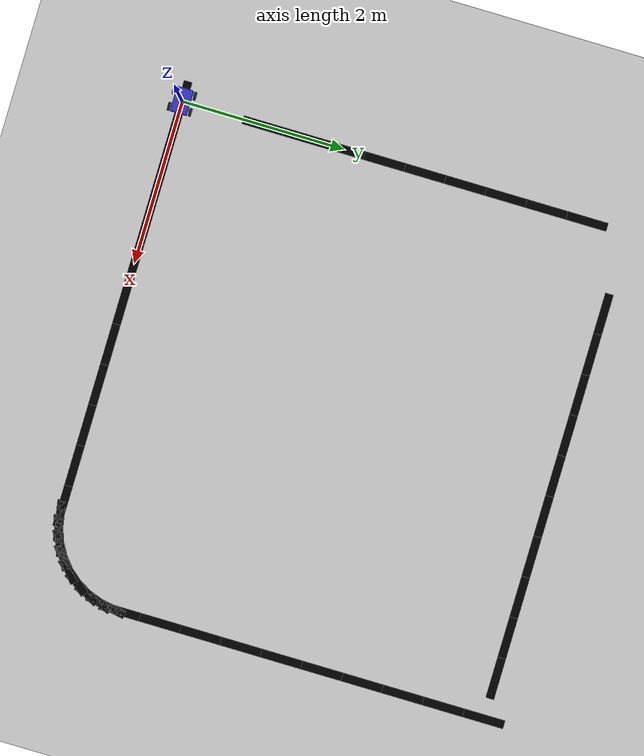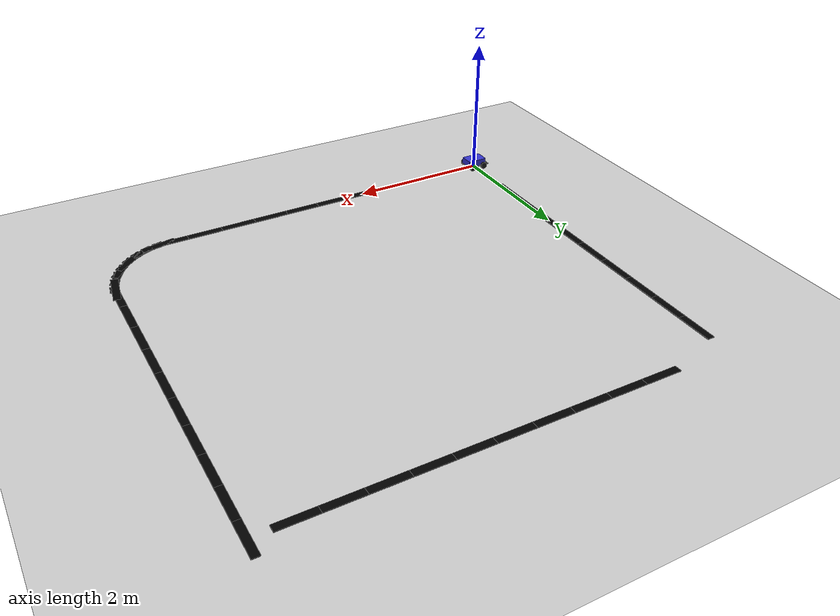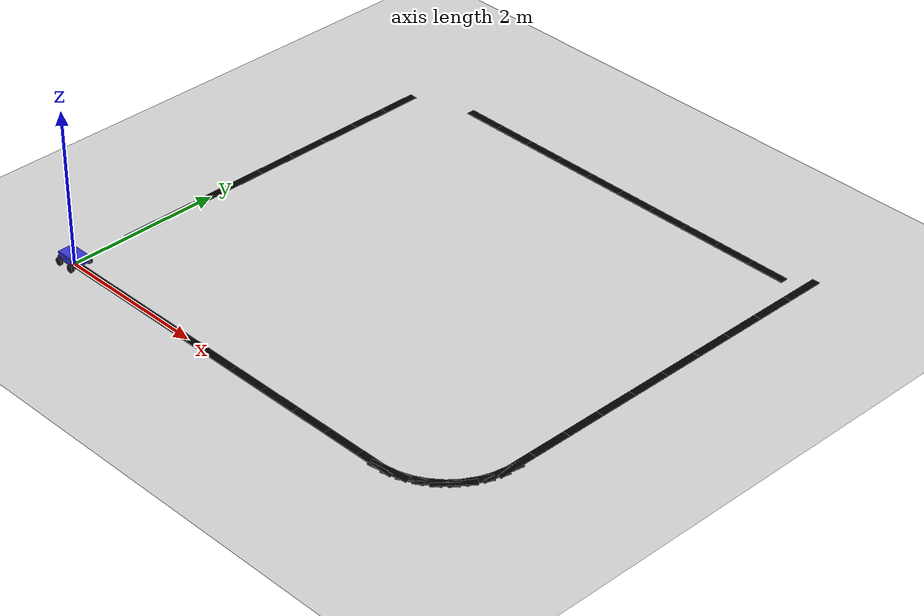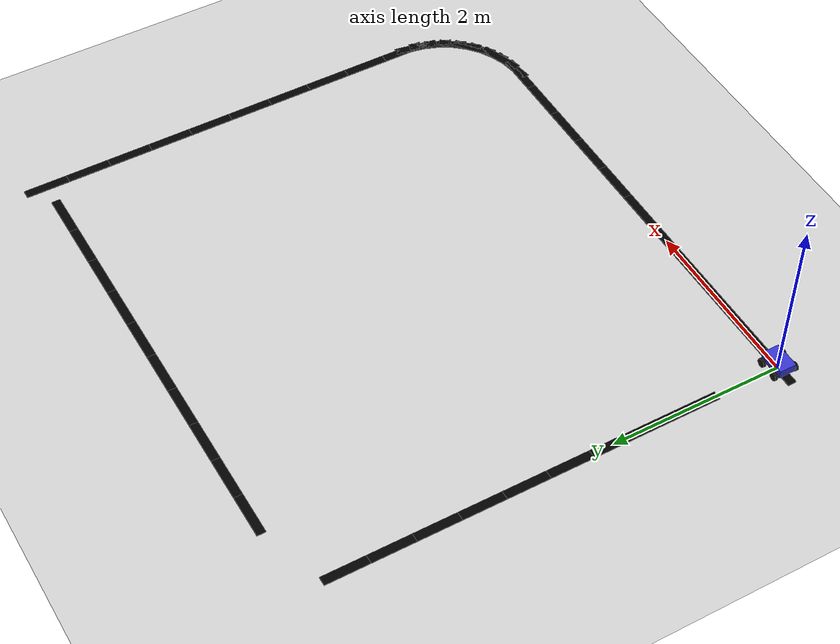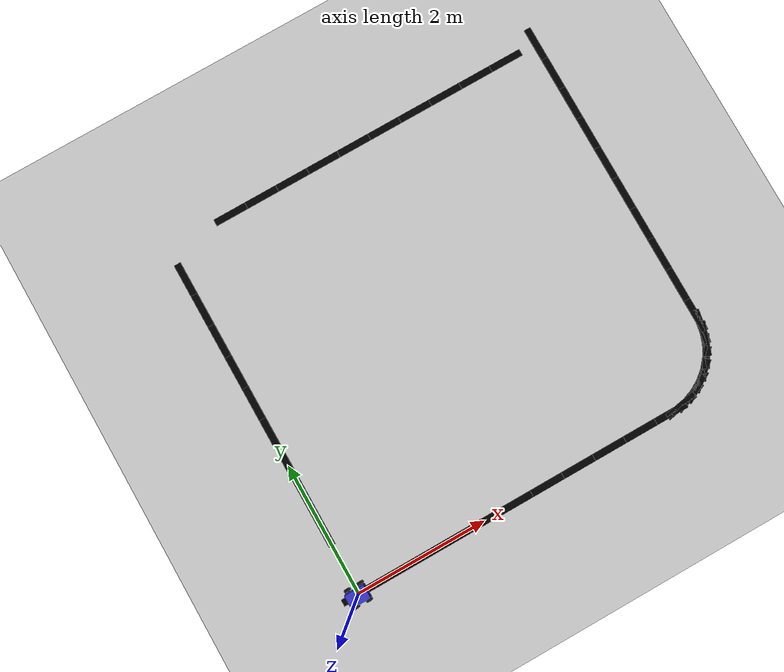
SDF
<?xml version="1.0" ?>
<sdf version="1.7">
  <world name="line_following_world">
    <!-- Sun - Directional light -->
    <light type="directional" name="sun">
      <cast_shadows>true</cast_shadows>
      <pose>0 0 10 0 0 0</pose>
      <diffuse>0.8 0.8 0.8 1</diffuse>
      <specular>0.2 0.2 0.2 1</specular>
      <direction>-0.5 0.1 -0.9</direction>
    </light>

    <!-- Ground Plane -->
    <model name="ground_plane">
      <static>true</static>
      <link name="link">
        <collision name="collision">
          <geometry>
            <plane>
              <normal>0 0 1</normal>
              <size>100 100</size>
            </plane>
          </geometry>
          <surface>
            <friction>
              <ode>
                <mu>100</mu>
                <mu2>50</mu2>
              </ode>
            </friction>
          </surface>
        </collision>
        <visual name="visual">
          <geometry>
            <plane>
              <normal>0 0 1</normal>
              <size>100 100</size>
            </plane>
          </geometry>
          <material>
            <ambient>0.8 0.8 0.8 1</ambient>
            <diffuse>0.8 0.8 0.8 1</diffuse>
            <specular>0.8 0.8 0.8 1</specular>
          </material>
        </visual>
      </link>
    </model>

    <!-- Line to follow -->
    <model name="curved_track">
      <static>true</static>
      <!-- 36 segments forming a circle -->
      <!-- Each segment is a small box placed along a circular arc -->
      <!-- Radius of the track -->
      <!-- Feel free to adjust radius or number of segments -->

      <!-- Circle: radius = 3m, segments = 36, segment angle = 10 degrees -->
      <!-- Each segment has a slight rotation and offset -->

      <!-- We'll repeat one segment 36 times around a circle -->
      <!-- Black color for the line -->
      <!-- Box size = (0.5 x 0.1 x 0.01) -->

      <!-- Generated curve segments -->
      <!-- START CURVE -->
      <!-- Generated via script or manually. Here's the result: -->
      <!-- Loop from i = 0 to 35 (36 segments) -->
      <!-- Each has pose: x = r*cos(theta), y = r*sin(theta), yaw = theta -->
      <!-- Each angle = i * 10 degrees = i * π/18 -->

      <!-- BEGIN CIRCULAR TRACK SEGMENTS -->
      <!-- Radius: 3.0, Segment count: 36 -->
      <!-- Each segment is rotated to follow the curve -->
      <!-- Simplified XML listing just a few and pattern follows -->
      <!-- Full list for smooth circle -->
      <!-- Each link name must be unique -->
      <!-- We will only show a few here to keep it brief -->
      <!-- You can generate full with a script or request more -->

      <!-- You can replace this with a loop in a script for a full circle -->
      <!-- Example first 6 segments shown -->

    <link name="segment_0">
      <pose>0.000 0.000 0.01 0 0 0.0000</pose>
      <visual name="visual_0">
        <geometry>
          <box>
            <size>0.5 0.1 0.01</size>
          </box>
        </geometry>
        <material>
          <ambient>0 0 0 1</ambient>
          <diffuse>0 0 0 1</diffuse>
        </material>
      </visual>
    </link>

    <link name="segment_1">
      <pose>0.500 0.000 0.01 0 0 0.0000</pose>
      <visual name="visual_1">
        <geometry>
          <box>
            <size>0.5 0.1 0.01</size>
          </box>
        </geometry>
        <material>
          <ambient>0 0 0 1</ambient>
          <diffuse>0 0 0 1</diffuse>
        </material>
      </visual>
    </link>

    <link name="segment_2">
      <pose>1.000 0.000 0.01 0 0 0.0000</pose>
      <visual name="visual_2">
        <geometry>
          <box>
            <size>0.5 0.1 0.01</size>
          </box>
        </geometry>
        <material>
          <ambient>0 0 0 1</ambient>
          <diffuse>0 0 0 1</diffuse>
        </material>
      </visual>
    </link>

    <link name="segment_3">
      <pose>1.500 0.000 0.01 0 0 0.0000</pose>
      <visual name="visual_3">
        <geometry>
          <box>
            <size>0.5 0.1 0.01</size>
          </box>
        </geometry>
        <material>
          <ambient>0 0 0 1</ambient>
          <diffuse>0 0 0 1</diffuse>
        </material>
      </visual>
    </link>

    <link name="segment_4">
      <pose>2.000 0.000 0.01 0 0 0.0000</pose>
      <visual name="visual_4">
        <geometry>
          <box>
            <size>0.5 0.1 0.01</size>
          </box>
        </geometry>
        <material>
          <ambient>0 0 0 1</ambient>
          <diffuse>0 0 0 1</diffuse>
        </material>
      </visual>
    </link>

    <link name="segment_5">
      <pose>2.500 0.000 0.01 0 0 0.0000</pose>
      <visual name="visual_5">
        <geometry>
          <box>
            <size>0.5 0.1 0.01</size>
          </box>
        </geometry>
        <material>
          <ambient>0 0 0 1</ambient>
          <diffuse>0 0 0 1</diffuse>
        </material>
      </visual>
    </link>

    <link name="segment_6">
      <pose>3.000 0.000 0.01 0 0 0.0000</pose>
      <visual name="visual_6">
        <geometry>
          <box>
            <size>0.5 0.1 0.01</size>
          </box>
        </geometry>
        <material>
          <ambient>0 0 0 1</ambient>
          <diffuse>0 0 0 1</diffuse>
        </material>
      </visual>
    </link>

    <link name="segment_7">
      <pose>3.500 0.000 0.01 0 0 0.0000</pose>
      <visual name="visual_7">
        <geometry>
          <box>
            <size>0.5 0.1 0.01</size>
          </box>
        </geometry>
        <material>
          <ambient>0 0 0 1</ambient>
          <diffuse>0 0 0 1</diffuse>
        </material>
      </visual>
    </link>

    <link name="segment_8">
      <pose>4.000 0.000 0.01 0 0 0.0000</pose>
      <visual name="visual_8">
        <geometry>
          <box>
            <size>0.5 0.1 0.01</size>
          </box>
        </geometry>
        <material>
          <ambient>0 0 0 1</ambient>
          <diffuse>0 0 0 1</diffuse>
        </material>
      </visual>
    </link>

    <link name="segment_9">
      <pose>4.500 0.000 0.01 0 0 0.0000</pose>
      <visual name="visual_9">
        <geometry>
          <box>
            <size>0.5 0.1 0.01</size>
          </box>
        </geometry>
        <material>
          <ambient>0 0 0 1</ambient>
          <diffuse>0 0 0 1</diffuse>
        </material>
      </visual>
    </link>

    <link name="segment_10">
      <pose>5.000 0.000 0.01 0 0 0.0000</pose>
      <visual name="visual_10">
        <geometry>
          <box>
            <size>0.5 0.1 0.01</size>
          </box>
        </geometry>
        <material>
          <ambient>0 0 0 1</ambient>
          <diffuse>0 0 0 1</diffuse>
        </material>
      </visual>
    </link>

    <link name="segment_11">
      <pose>5.174 0.015 0.01 0 0 0.1745</pose>
      <visual name="visual_11">
        <geometry>
          <box>
            <size>0.5 0.1 0.01</size>
          </box>
        </geometry>
        <material>
          <ambient>0 0 0 1</ambient>
          <diffuse>0 0 0 1</diffuse>
        </material>
      </visual>
    </link>

    <link name="segment_12">
      <pose>5.342 0.060 0.01 0 0 0.3491</pose>
      <visual name="visual_12">
        <geometry>
          <box>
            <size>0.5 0.1 0.01</size>
          </box>
        </geometry>
        <material>
          <ambient>0 0 0 1</ambient>
          <diffuse>0 0 0 1</diffuse>
        </material>
      </visual>
    </link>

    <link name="segment_13">
      <pose>5.500 0.134 0.01 0 0 0.5236</pose>
      <visual name="visual_13">
        <geometry>
          <box>
            <size>0.5 0.1 0.01</size>
          </box>
        </geometry>
        <material>
          <ambient>0 0 0 1</ambient>
          <diffuse>0 0 0 1</diffuse>
        </material>
      </visual>
    </link>

    <link name="segment_14">
      <pose>5.643 0.234 0.01 0 0 0.6981</pose>
      <visual name="visual_14">
        <geometry>
          <box>
            <size>0.5 0.1 0.01</size>
          </box>
        </geometry>
        <material>
          <ambient>0 0 0 1</ambient>
          <diffuse>0 0 0 1</diffuse>
        </material>
      </visual>
    </link>

    <link name="segment_15">
      <pose>5.766 0.357 0.01 0 0 0.8727</pose>
      <visual name="visual_15">
        <geometry>
          <box>
            <size>0.5 0.1 0.01</size>
          </box>
        </geometry>
        <material>
          <ambient>0 0 0 1</ambient>
          <diffuse>0 0 0 1</diffuse>
        </material>
      </visual>
    </link>

    <link name="segment_16">
      <pose>5.866 0.500 0.01 0 0 1.0472</pose>
      <visual name="visual_16">
        <geometry>
          <box>
            <size>0.5 0.1 0.01</size>
          </box>
        </geometry>
        <material>
          <ambient>0 0 0 1</ambient>
          <diffuse>0 0 0 1</diffuse>
        </material>
      </visual>
    </link>

    <link name="segment_17">
      <pose>5.940 0.658 0.01 0 0 1.2217</pose>
      <visual name="visual_17">
        <geometry>
          <box>
            <size>0.5 0.1 0.01</size>
          </box>
        </geometry>
        <material>
          <ambient>0 0 0 1</ambient>
          <diffuse>0 0 0 1</diffuse>
        </material>
      </visual>
    </link>

    <link name="segment_18">
      <pose>5.985 0.826 0.01 0 0 1.3963</pose>
      <visual name="visual_18">
        <geometry>
          <box>
            <size>0.5 0.1 0.01</size>
          </box>
        </geometry>
        <material>
          <ambient>0 0 0 1</ambient>
          <diffuse>0 0 0 1</diffuse>
        </material>
      </visual>
    </link>

    <link name="segment_19">
      <pose>6.000 1.000 0.01 0 0 1.5708</pose>
      <visual name="visual_19">
        <geometry>
          <box>
            <size>0.5 0.1 0.01</size>
          </box>
        </geometry>
        <material>
          <ambient>0 0 0 1</ambient>
          <diffuse>0 0 0 1</diffuse>
        </material>
      </visual>
    </link>

    <link name="segment_20">
      <pose>6.000 1.500 0.01 0 0 1.5708</pose>
      <visual name="visual_20">
        <geometry>
          <box>
            <size>0.5 0.1 0.01</size>
          </box>
        </geometry>
        <material>
          <ambient>0 0 0 1</ambient>
          <diffuse>0 0 0 1</diffuse>
        </material>
      </visual>
    </link>

    <link name="segment_21">
      <pose>6.000 2.000 0.01 0 0 1.5708</pose>
      <visual name="visual_21">
        <geometry>
          <box>
            <size>0.5 0.1 0.01</size>
          </box>
        </geometry>
        <material>
          <ambient>0 0 0 1</ambient>
          <diffuse>0 0 0 1</diffuse>
        </material>
      </visual>
    </link>

    <link name="segment_22">
      <pose>6.000 2.500 0.01 0 0 1.5708</pose>
      <visual name="visual_22">
        <geometry>
          <box>
            <size>0.5 0.1 0.01</size>
          </box>
        </geometry>
        <material>
          <ambient>0 0 0 1</ambient>
          <diffuse>0 0 0 1</diffuse>
        </material>
      </visual>
    </link>

    <link name="segment_23">
      <pose>6.000 3.000 0.01 0 0 1.5708</pose>
      <visual name="visual_23">
        <geometry>
          <box>
            <size>0.5 0.1 0.01</size>
          </box>
        </geometry>
        <material>
          <ambient>0 0 0 1</ambient>
          <diffuse>0 0 0 1</diffuse>
        </material>
      </visual>
    </link>

    <link name="segment_24">
      <pose>6.000 3.500 0.01 0 0 1.5708</pose>
      <visual name="visual_24">
        <geometry>
          <box>
            <size>0.5 0.1 0.01</size>
          </box>
        </geometry>
        <material>
          <ambient>0 0 0 1</ambient>
          <diffuse>0 0 0 1</diffuse>
        </material>
      </visual>
    </link>

    <link name="segment_25">
      <pose>6.000 4.000 0.01 0 0 1.5708</pose>
      <visual name="visual_25">
        <geometry>
          <box>
            <size>0.5 0.1 0.01</size>
          </box>
        </geometry>
        <material>
          <ambient>0 0 0 1</ambient>
          <diffuse>0 0 0 1</diffuse>
        </material>
      </visual>
    </link>

    <link name="segment_26">
      <pose>6.000 4.500 0.01 0 0 1.5708</pose>
      <visual name="visual_26">
        <geometry>
          <box>
            <size>0.5 0.1 0.01</size>
          </box>
        </geometry>
        <material>
          <ambient>0 0 0 1</ambient>
          <diffuse>0 0 0 1</diffuse>
        </material>
      </visual>
    </link>

    <link name="segment_27">
      <pose>6.000 5.000 0.01 0 0 1.5708</pose>
      <visual name="visual_27">
        <geometry>
          <box>
            <size>0.5 0.1 0.01</size>
          </box>
        </geometry>
        <material>
          <ambient>0 0 0 1</ambient>
          <diffuse>0 0 0 1</diffuse>
        </material>
      </visual>
    </link>

    <link name="segment_28">
      <pose>6.000 5.500 0.01 0 0 1.5708</pose>
      <visual name="visual_28">
        <geometry>
          <box>
            <size>0.5 0.1 0.01</size>
          </box>
        </geometry>
        <material>
          <ambient>0 0 0 1</ambient>
          <diffuse>0 0 0 1</diffuse>
        </material>
      </visual>
    </link>

    <link name="segment_29">
      <pose>5.500 5.500 0.01 0 0 3.1416</pose>
      <visual name="visual_29">
        <geometry>
          <box>
            <size>0.5 0.1 0.01</size>
          </box>
        </geometry>
        <material>
          <ambient>0 0 0 1</ambient>
          <diffuse>0 0 0 1</diffuse>
        </material>
      </visual>
    </link>

    <link name="segment_30">
      <pose>5.000 5.500 0.01 0 0 3.1416</pose>
      <visual name="visual_30">
        <geometry>
          <box>
            <size>0.5 0.1 0.01</size>
          </box>
        </geometry>
        <material>
          <ambient>0 0 0 1</ambient>
          <diffuse>0 0 0 1</diffuse>
        </material>
      </visual>
    </link>

    <link name="segment_31">
      <pose>4.500 5.500 0.01 0 0 3.1416</pose>
      <visual name="visual_31">
        <geometry>
          <box>
            <size>0.5 0.1 0.01</size>
          </box>
        </geometry>
        <material>
          <ambient>0 0 0 1</ambient>
          <diffuse>0 0 0 1</diffuse>
        </material>
      </visual>
    </link>

    <link name="segment_32">
      <pose>4.000 5.500 0.01 0 0 3.1416</pose>
      <visual name="visual_32">
        <geometry>
          <box>
            <size>0.5 0.1 0.01</size>
          </box>
        </geometry>
        <material>
          <ambient>0 0 0 1</ambient>
          <diffuse>0 0 0 1</diffuse>
        </material>
      </visual>
    </link>

    <link name="segment_33">
      <pose>3.500 5.500 0.01 0 0 3.1416</pose>
      <visual name="visual_33">
        <geometry>
          <box>
            <size>0.5 0.1 0.01</size>
          </box>
        </geometry>
        <material>
          <ambient>0 0 0 1</ambient>
          <diffuse>0 0 0 1</diffuse>
        </material>
      </visual>
    </link>

    <link name="segment_34">
      <pose>3.000 5.500 0.01 0 0 3.1416</pose>
      <visual name="visual_34">
        <geometry>
          <box>
            <size>0.5 0.1 0.01</size>
          </box>
        </geometry>
        <material>
          <ambient>0 0 0 1</ambient>
          <diffuse>0 0 0 1</diffuse>
        </material>
      </visual>
    </link>

    <link name="segment_35">
      <pose>2.500 5.500 0.01 0 0 3.1416</pose>
      <visual name="visual_35">
        <geometry>
          <box>
            <size>0.5 0.1 0.01</size>
          </box>
        </geometry>
        <material>
          <ambient>0 0 0 1</ambient>
          <diffuse>0 0 0 1</diffuse>
        </material>
      </visual>
    </link>

    <link name="segment_36">
      <pose>2.000 5.500 0.01 0 0 3.1416</pose>
      <visual name="visual_36">
        <geometry>
          <box>
            <size>0.5 0.1 0.01</size>
          </box>
        </geometry>
        <material>
          <ambient>0 0 0 1</ambient>
          <diffuse>0 0 0 1</diffuse>
        </material>
      </visual>
    </link>

    <link name="segment_37">
      <pose>1.500 5.500 0.01 0 0 3.1416</pose>
      <visual name="visual_37">
        <geometry>
          <box>
            <size>0.5 0.1 0.01</size>
          </box>
        </geometry>
        <material>
          <ambient>0 0 0 1</ambient>
          <diffuse>0 0 0 1</diffuse>
        </material>
      </visual>
    </link>

    <link name="segment_38">
      <pose>1.000 5.500 0.01 0 0 3.1416</pose>
      <visual name="visual_38">
        <geometry>
          <box>
            <size>0.5 0.1 0.01</size>
          </box>
        </geometry>
        <material>
          <ambient>0 0 0 1</ambient>
          <diffuse>0 0 0 1</diffuse>
        </material>
      </visual>
    </link>

    <link name="segment_39">
      <pose>0.000 5.000 0.01 0 0 -1.5708</pose>
      <visual name="visual_39">
        <geometry>
          <box>
            <size>0.5 0.1 0.01</size>
          </box>
        </geometry>
        <material>
          <ambient>0 0 0 1</ambient>
          <diffuse>0 0 0 1</diffuse>
        </material>
      </visual>
    </link>

    <link name="segment_40">
      <pose>0.000 4.500 0.01 0 0 -1.5708</pose>
      <visual name="visual_40">
        <geometry>
          <box>
            <size>0.5 0.1 0.01</size>
          </box>
        </geometry>
        <material>
          <ambient>0 0 0 1</ambient>
          <diffuse>0 0 0 1</diffuse>
        </material>
      </visual>
    </link>

    <link name="segment_41">
      <pose>0.000 4.000 0.01 0 0 -1.5708</pose>
      <visual name="visual_41">
        <geometry>
          <box>
            <size>0.5 0.1 0.01</size>
          </box>
        </geometry>
        <material>
          <ambient>0 0 0 1</ambient>
          <diffuse>0 0 0 1</diffuse>
        </material>
      </visual>
    </link>

    <link name="segment_42">
      <pose>0.000 3.500 0.01 0 0 -1.5708</pose>
      <visual name="visual_42">
        <geometry>
          <box>
            <size>0.5 0.1 0.01</size>
          </box>
        </geometry>
        <material>
          <ambient>0 0 0 1</ambient>
          <diffuse>0 0 0 1</diffuse>
        </material>
      </visual>
    </link>

    <link name="segment_43">
      <pose>0.000 3.000 0.01 0 0 -1.5708</pose>
      <visual name="visual_43">
        <geometry>
          <box>
            <size>0.5 0.1 0.01</size>
          </box>
        </geometry>
        <material>
          <ambient>0 0 0 1</ambient>
          <diffuse>0 0 0 1</diffuse>
        </material>
      </visual>
    </link>

    <link name="segment_44">
      <pose>0.000 2.500 0.01 0 0 -1.5708</pose>
      <visual name="visual_44">
        <geometry>
          <box>
            <size>0.5 0.1 0.01</size>
          </box>
        </geometry>
        <material>
          <ambient>0 0 0 1</ambient>
          <diffuse>0 0 0 1</diffuse>
        </material>
      </visual>
    </link>

    <link name="segment_45">
      <pose>0.000 2.000 0.01 0 0 -1.5708</pose>
      <visual name="visual_45">
        <geometry>
          <box>
            <size>0.5 0.1 0.01</size>
          </box>
        </geometry>
        <material>
          <ambient>0 0 0 1</ambient>
          <diffuse>0 0 0 1</diffuse>
        </material>
      </visual>
    </link>

    <link name="segment_46">
      <pose>0.000 1.500 0.01 0 0 -1.5708</pose>
      <visual name="visual_46">
        <geometry>
          <box>
            <size>0.5 0.1 0.01</size>
          </box>
        </geometry>
        <material>
          <ambient>0 0 0 1</ambient>
          <diffuse>0 0 0 1</diffuse>
        </material>
      </visual>
    </link>

    <link name="segment_47">
      <pose>0.000 1.000 0.01 0 0 -1.5708</pose>
      <visual name="visual_47">
        <geometry>
          <box>
            <size>0.5 0.1 0.01</size>
          </box>
        </geometry>
        <material>
          <ambient>0 0 0 1</ambient>
          <diffuse>0 0 0 1</diffuse>
        </material>
      </visual>
    </link>

    </model>

    <!-- Line Following Robot Model -->
    <model name="line_follower_robot">
      <pose>0 0 0.1 0 0 0</pose>

     <link name="chassis">
        <inertial>
          <mass>1.0</mass>
          <inertia>
            <ixx>0.1</ixx>
            <iyy>0.1</iyy>
            <izz>0.1</izz>
            <ixy>0</ixy>
            <ixz>0</ixz>
            <iyz>0</iyz>
          </inertia>
        </inertial>
        <collision name="collision">
          <geometry>
            <box>
              <size>0.3 0.2 0.1</size>
            </box>
          </geometry>
        </collision>
        <visual name="visual">
          <geometry>
            <box>
              <size>0.3 0.2 0.1</size>
            </box>
          </geometry>
          <material>
            <ambient>0.2 0.2 0.8 1</ambient>
            <diffuse>0.2 0.2 0.8 1</diffuse>
            <specular>0.2 0.2 0.8 1</specular>
          </material>
        </visual>

        <!-- Stereo Camera -->
        <sensor name="stereo_camera" type="camera">
          <pose>0.15 0 0.1 0 0.3 0</pose>
          <always_on>true</always_on>
          <update_rate>30</update_rate>
          <camera>
            <horizontal_fov>1.047</horizontal_fov>
            <image>
              <width>640</width>
              <height>480</height>
              <format>R8G8B8</format>
            </image>
            <clip>
              <near>0.1</near>
              <far>100</far>
            </clip>
            <noise>
              <type>gaussian</type>
              <mean>0.0</mean>
              <stddev>0.007</stddev>
            </noise>
          </camera>
          <plugin
            filename="libignition-gazebo-camera-system.so"
            name="ignition::gazebo::systems::Camera">
            <topic>/stereo_camera</topic>
          </plugin>
        </sensor>

        <!-- LiDAR Frame -->
        <frame name="lidar_frame" attached_to='chassis'>
          <pose>0.15 0 0.15 0 0 0</pose>
        </frame>

        <!-- LiDAR Sensor -->
        <sensor name='gpu_lidar' type='gpu_lidar'>
          <pose relative_to='lidar_frame'>0 0 0 0 0 0</pose>
          <topic>lidar</topic>
          <update_rate>10</update_rate>
          <ray>
            <scan>
              <horizontal>
                <samples>640</samples>
                <resolution>1</resolution>
                <min_angle>-1.396263</min_angle>
                <max_angle>1.396263</max_angle>
              </horizontal>
              <vertical>
                <samples>1</samples>
                <resolution>0.01</resolution>
                <min_angle>0</min_angle>
                <max_angle>0</max_angle>
              </vertical>
            </scan>
            <range>
              <min>0.08</min>
              <max>10.0</max>
              <resolution>0.01</resolution>
            </range>
          </ray>
          <always_on>1</always_on>
          <visualize>true</visualize>
        </sensor>
      </link>

      <!-- Front Left Wheel -->
      <link name="front_left_wheel">
        <pose>0.1 0.13 -0.05 1.5707 0 0</pose>
        <inertial>
          <mass>0.2</mass>
          <inertia>
            <ixx>0.0001</ixx>
            <iyy>0.0001</iyy>
            <izz>0.0001</izz>
            <ixy>0</ixy>
            <ixz>0</ixz>
            <iyz>0</iyz>
          </inertia>
        </inertial>
        <collision name="collision">
          <geometry>
            <cylinder>
              <radius>0.05</radius>
              <length>0.03</length>
            </cylinder>
          </geometry>
        </collision>
        <visual name="visual">
          <geometry>
            <cylinder>
              <radius>0.05</radius>
              <length>0.03</length>
            </cylinder>
          </geometry>
          <material>
            <ambient>0.1 0.1 0.1 1</ambient>
            <diffuse>0.1 0.1 0.1 1</diffuse>
            <specular>0.1 0.1 0.1 1</specular>
          </material>
        </visual>
      </link>

      <!-- Front Right Wheel -->
      <link name="front_right_wheel">
        <pose>0.1 -0.13 -0.05 1.5707 0 0</pose>
        <inertial>
          <mass>0.2</mass>
          <inertia>
            <ixx>0.0001</ixx>
            <iyy>0.0001</iyy>
            <izz>0.0001</izz>
            <ixy>0</ixy>
            <ixz>0</ixz>
            <iyz>0</iyz>
          </inertia>
        </inertial>
        <collision name="collision">
          <geometry>
            <cylinder>
              <radius>0.05</radius>
              <length>0.03</length>
            </cylinder>
          </geometry>
        </collision>
        <visual name="visual">
          <geometry>
            <cylinder>
              <radius>0.05</radius>
              <length>0.03</length>
            </cylinder>
          </geometry>
          <material>
            <ambient>0.1 0.1 0.1 1</ambient>
            <diffuse>0.1 0.1 0.1 1</diffuse>
            <specular>0.1 0.1 0.1 1</specular>
          </material>
        </visual>
      </link>

      <!-- Rear Left Wheel -->
      <link name="rear_left_wheel">
        <pose>-0.1 0.13 -0.05 1.5707 0 0</pose>
        <inertial>
          <mass>0.2</mass>
          <inertia>
            <ixx>0.0001</ixx>
            <iyy>0.0001</iyy>
            <izz>0.0001</izz>
            <ixy>0</ixy>
            <ixz>0</ixz>
            <iyz>0</iyz>
          </inertia>
        </inertial>
        <collision name="collision">
          <geometry>
            <cylinder>
              <radius>0.05</radius>
              <length>0.03</length>
            </cylinder>
          </geometry>
        </collision>
        <visual name="visual">
          <geometry>
            <cylinder>
              <radius>0.05</radius>
              <length>0.03</length>
            </cylinder>
          </geometry>
          <material>
            <ambient>0.1 0.1 0.1 1</ambient>
            <diffuse>0.1 0.1 0.1 1</diffuse>
            <specular>0.1 0.1 0.1 1</specular>
          </material>
        </visual>
      </link>

      <!-- Rear Right Wheel -->
      <link name="rear_right_wheel">
        <pose>-0.1 -0.13 -0.05 1.5707 0 0</pose>
        <inertial>
          <mass>0.2</mass>
          <inertia>
            <ixx>0.0001</ixx>
            <iyy>0.0001</iyy>
            <izz>0.0001</izz>
            <ixy>0</ixy>
            <ixz>0</ixz>
            <iyz>0</iyz>
          </inertia>
        </inertial>
        <collision name="collision">
          <geometry>
            <cylinder>
              <radius>0.05</radius>
              <length>0.03</length>
            </cylinder>
          </geometry>
        </collision>
        <visual name="visual">
          <geometry>
            <cylinder>
              <radius>0.05</radius>
              <length>0.03</length>
            </cylinder>
          </geometry>
          <material>
            <ambient>0.1 0.1 0.1 1</ambient>
            <diffuse>0.1 0.1 0.1 1</diffuse>
            <specular>0.1 0.1 0.1 1</specular>
          </material>
        </visual>
      </link>

      <!-- Joints -->
      <!-- Front Left Wheel Joint -->
      <joint name="front_left_wheel_joint" type="revolute">
        <parent>chassis</parent>
        <child>front_left_wheel</child>
        <axis>
          <xyz>0 0 1</xyz>
          <limit>
            <lower>-1.79769e+308</lower>
            <upper>1.79769e+308</upper>
          </limit>
        </axis>
      </joint>

      <!-- Front Right Wheel Joint -->
      <joint name="front_right_wheel_joint" type="revolute">
        <parent>chassis</parent>
        <child>front_right_wheel</child>
        <axis>
          <xyz>0 0 1</xyz>
          <limit>
            <lower>-1.79769e+308</lower>
            <upper>1.79769e+308</upper>
          </limit>
        </axis>
      </joint>

      <!-- Rear Left Wheel Joint -->
      <joint name="rear_left_wheel_joint" type="revolute">
        <parent>chassis</parent>
        <child>rear_left_wheel</child>
        <axis>
          <xyz>0 0 1</xyz>
          <limit>
            <lower>-1.79769e+308</lower>
            <upper>1.79769e+308</upper>
          </limit>
        </axis>
      </joint>

      <!-- Rear Right Wheel Joint -->
      <joint name="rear_right_wheel_joint" type="revolute">
        <parent>chassis</parent>
        <child>rear_right_wheel</child>
        <axis>
          <xyz>0 0 1</xyz>
          <limit>
            <lower>-1.79769e+308</lower>
            <upper>1.79769e+308</upper>
          </limit>
        </axis>
      </joint>

      <!-- Plugins for driving the robot -->
      <plugin
        filename="libignition-gazebo-diff-drive-system.so"
        name="ignition::gazebo::systems::DiffDrive">
        <left_joint>front_left_wheel_joint</left_joint>
        <left_joint>rear_left_wheel_joint</left_joint>
        <right_joint>front_right_wheel_joint</right_joint>
        <right_joint>rear_right_wheel_joint</right_joint>
        <wheel_separation>0.26</wheel_separation>
        <wheel_radius>0.05</wheel_radius>
        <odom_publish_frequency>10</odom_publish_frequency>
        <topic>cmd_vel</topic>
      </plugin>
    </model>

    <!-- Physics -->
    <physics name="1ms" type="ignored">
      <max_step_size>0.001</max_step_size>
      <real_time_factor>1.0</real_time_factor>
    </physics>

    <!-- Essential Plugins -->
    <plugin
      filename="libignition-gazebo-physics-system.so"
      name="ignition::gazebo::systems::Physics">
    </plugin>
    <plugin
      filename="libignition-gazebo-user-commands-system.so"
      name="ignition::gazebo::systems::UserCommands">
    </plugin>
    <plugin
      filename="libignition-gazebo-scene-broadcaster-system.so"
      name="ignition::gazebo::systems::SceneBroadcaster">
    </plugin>
    <plugin
      filename="libignition-gazebo-sensors-system.so"
      name="ignition::gazebo::systems::Sensors">
      <render_engine>ogre2</render_engine>
    </plugin>
  </world>
</sdf>
